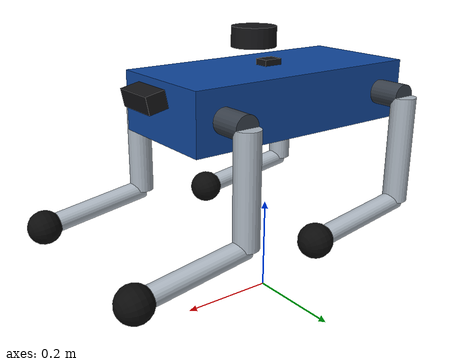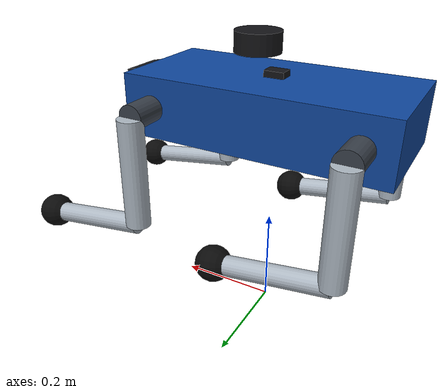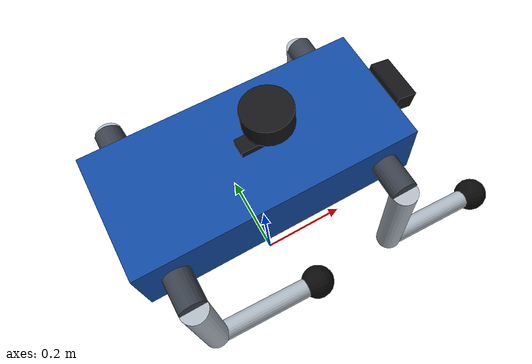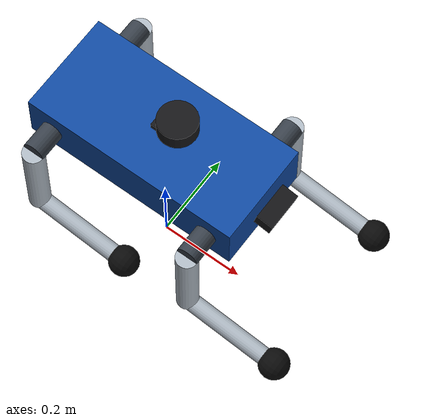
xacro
<?xml version="1.0"?>
<robot xmlns:xacro="http://www.ros.org/wiki/xacro" name="wakula_quadruped">
  <!-- 仅用于 RViz 外形预览和传感器 TF 占位；尺寸、惯量与关节范围均未真机标定。
       本文件不包含 ros2_control、驱动插件、运动学或动力学控制实现。 -->
  <xacro:property name="body_length" value="0.52"/>
  <xacro:property name="body_width" value="0.24"/>
  <xacro:property name="body_height" value="0.12"/>
  <xacro:property name="hip_length" value="0.065"/>
  <xacro:property name="upper_leg_length" value="0.22"/>
  <xacro:property name="lower_leg_length" value="0.23"/>
  <xacro:property name="leg_radius" value="0.025"/>
  <xacro:property name="foot_radius" value="0.035"/>

  <material name="wakula_blue"><color rgba="0.06 0.28 0.62 1"/></material>
  <material name="joint_gray"><color rgba="0.22 0.25 0.29 1"/></material>
  <material name="leg_silver"><color rgba="0.68 0.72 0.76 1"/></material>
  <material name="foot_black"><color rgba="0.04 0.04 0.04 1"/></material>
  <material name="sensor_black"><color rgba="0.08 0.08 0.09 1"/></material>

  <xacro:macro name="box_inertial" params="mass x y z ox:=0 oy:=0 oz:=0">
    <inertial>
      <origin xyz="${ox} ${oy} ${oz}"/>
      <mass value="${mass}"/>
      <inertia ixx="${mass * (y*y + z*z) / 12.0}" ixy="0" ixz="0"
               iyy="${mass * (x*x + z*z) / 12.0}" iyz="0"
               izz="${mass * (x*x + y*y) / 12.0}"/>
    </inertial>
  </xacro:macro>

  <xacro:macro name="sphere_inertial" params="mass radius">
    <inertial>
      <mass value="${mass}"/>
      <inertia ixx="${0.4 * mass * radius * radius}" ixy="0" ixz="0"
               iyy="${0.4 * mass * radius * radius}" iyz="0"
               izz="${0.4 * mass * radius * radius}"/>
    </inertial>
  </xacro:macro>

  <!-- base_footprint remains on the nominal ground plane for navigation. -->
  <link name="base_footprint"/>
  <joint name="base_footprint_joint" type="fixed">
    <parent link="base_footprint"/>
    <child link="base_link"/>
    <origin xyz="0 0 0.44"/>
  </joint>

  <link name="base_link">
    <visual>
      <geometry><box size="${body_length} ${body_width} ${body_height}"/></geometry>
      <material name="wakula_blue"/>
    </visual>
    <collision>
      <geometry><box size="${body_length} ${body_width} ${body_height}"/></geometry>
    </collision>
    <xacro:box_inertial mass="12.0" x="${body_length}" y="${body_width}" z="${body_height}"/>
  </link>

  <!-- side is +1 for left legs and -1 for right legs. -->
  <xacro:macro name="leg" params="prefix x y side">
    <link name="${prefix}_hip_link">
      <visual>
        <origin xyz="0 ${side * hip_length / 2.0} 0" rpy="${pi/2} 0 0"/>
        <geometry><cylinder radius="${leg_radius}" length="${hip_length}"/></geometry>
        <material name="joint_gray"/>
      </visual>
      <collision>
        <origin xyz="0 ${side * hip_length / 2.0} 0" rpy="${pi/2} 0 0"/>
        <geometry><cylinder radius="${leg_radius}" length="${hip_length}"/></geometry>
      </collision>
      <xacro:box_inertial mass="0.55" x="${2*leg_radius}" y="${hip_length}"
                           z="${2*leg_radius}" oy="${side * hip_length / 2.0}"/>
    </link>
    <joint name="${prefix}_hip_joint" type="revolute">
      <parent link="base_link"/>
      <child link="${prefix}_hip_link"/>
      <origin xyz="${x} ${y} 0"/>
      <axis xyz="1 0 0"/>
      <limit lower="-0.75" upper="0.75" effort="80" velocity="8"/>
      <dynamics damping="0.2" friction="0.05"/>
    </joint>

    <link name="${prefix}_upper_leg">
      <visual>
        <origin xyz="0 0 ${-upper_leg_length/2.0}"/>
        <geometry><cylinder radius="${leg_radius}" length="${upper_leg_length}"/></geometry>
        <material name="leg_silver"/>
      </visual>
      <collision>
        <origin xyz="0 0 ${-upper_leg_length/2.0}"/>
        <geometry><cylinder radius="${leg_radius}" length="${upper_leg_length}"/></geometry>
      </collision>
      <xacro:box_inertial mass="1.0" x="${2*leg_radius}" y="${2*leg_radius}"
                           z="${upper_leg_length}" oz="${-upper_leg_length/2.0}"/>
    </link>
    <joint name="${prefix}_thigh_joint" type="revolute">
      <parent link="${prefix}_hip_link"/>
      <child link="${prefix}_upper_leg"/>
      <origin xyz="0 ${side * hip_length} 0"/>
      <axis xyz="0 1 0"/>
      <limit lower="-1.57" upper="1.20" effort="120" velocity="10"/>
      <dynamics damping="0.25" friction="0.05"/>
    </joint>

    <link name="${prefix}_lower_leg">
      <visual>
        <origin xyz="0 0 ${-lower_leg_length/2.0}"/>
        <geometry><cylinder radius="${leg_radius * 0.8}" length="${lower_leg_length}"/></geometry>
        <material name="leg_silver"/>
      </visual>
      <collision>
        <origin xyz="0 0 ${-lower_leg_length/2.0}"/>
        <geometry><cylinder radius="${leg_radius * 0.8}" length="${lower_leg_length}"/></geometry>
      </collision>
      <xacro:box_inertial mass="0.65" x="${1.6*leg_radius}" y="${1.6*leg_radius}"
                           z="${lower_leg_length}" oz="${-lower_leg_length/2.0}"/>
    </link>
    <joint name="${prefix}_calf_joint" type="revolute">
      <parent link="${prefix}_upper_leg"/>
      <child link="${prefix}_lower_leg"/>
      <origin xyz="0 0 ${-upper_leg_length}"/>
      <axis xyz="0 1 0"/>
      <limit lower="-2.70" upper="-0.15" effort="120" velocity="10"/>
      <dynamics damping="0.25" friction="0.05"/>
    </joint>

    <link name="${prefix}_foot">
      <visual>
        <geometry><sphere radius="${foot_radius}"/></geometry>
        <material name="foot_black"/>
      </visual>
      <collision><geometry><sphere radius="${foot_radius}"/></geometry></collision>
      <xacro:sphere_inertial mass="0.12" radius="${foot_radius}"/>
    </link>
    <joint name="${prefix}_foot_joint" type="fixed">
      <parent link="${prefix}_lower_leg"/>
      <child link="${prefix}_foot"/>
      <origin xyz="0 0 ${-lower_leg_length}"/>
    </joint>
  </xacro:macro>

  <xacro:leg prefix="front_left"  x="0.20"  y="${body_width/2.0}"  side="1"/>
  <xacro:leg prefix="front_right" x="0.20"  y="${-body_width/2.0}" side="-1"/>
  <xacro:leg prefix="rear_left"   x="-0.20" y="${body_width/2.0}"  side="1"/>
  <xacro:leg prefix="rear_right"  x="-0.20" y="${-body_width/2.0}" side="-1"/>

  <!-- Sensor frames used by SLAM and terrain-perception nodes. -->
  <link name="imu_link">
    <visual><geometry><box size="0.04 0.03 0.015"/></geometry><material name="sensor_black"/></visual>
    <xacro:box_inertial mass="0.03" x="0.04" y="0.03" z="0.015"/>
  </link>
  <joint name="imu_joint" type="fixed">
    <parent link="base_link"/><child link="imu_link"/><origin xyz="0 0 0.065"/>
  </joint>

  <link name="lidar_link">
    <visual><geometry><cylinder radius="0.045" length="0.04"/></geometry><material name="sensor_black"/></visual>
    <xacro:box_inertial mass="0.18" x="0.09" y="0.09" z="0.04"/>
  </link>
  <joint name="lidar_joint" type="fixed">
    <!-- Nominal top-center reservation; replace with measured scan-center TF. -->
    <parent link="base_link"/><child link="lidar_link"/><origin xyz="0.04 0 0.12"/>
  </joint>

  <link name="camera_link">
    <visual><geometry><box size="0.04 0.09 0.035"/></geometry><material name="sensor_black"/></visual>
    <xacro:box_inertial mass="0.09" x="0.04" y="0.09" z="0.035"/>
  </link>
  <joint name="camera_joint" type="fixed">
    <!-- Nominal front-center reservation with 12-degree downward pitch. -->
    <parent link="base_link"/><child link="camera_link"/>
    <origin xyz="0.29 0 0.03" rpy="0 ${12*pi/180} 0"/>
  </joint>
  <link name="camera_optical_frame"/>
  <joint name="camera_optical_joint" type="fixed">
    <parent link="camera_link"/><child link="camera_optical_frame"/>
    <origin rpy="${-pi/2} 0 ${-pi/2}"/>
  </joint>

</robot>
